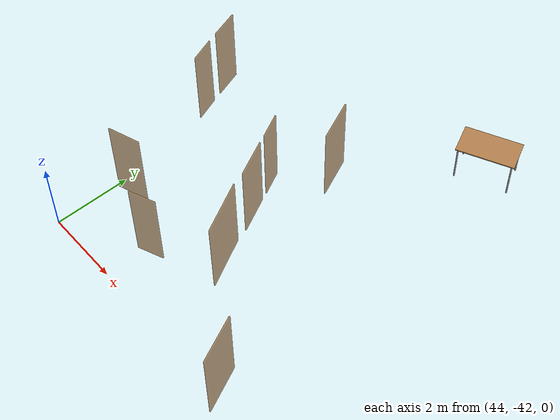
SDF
<sdf version="1.7">
 <world name="world">
  <include><uri>model://sun</uri></include>
  <include>
   <name>OpenRobotics/Table_8</name>
   <uri>model://Table</uri>
   <pose>49.67875066271883 -33.06764321038489 0.0 0 0 0.4547</pose>
   <static>True</static>
  </include>
  <model name="D1">
   <pose>46.92098903169145 -38.269014869920476 0.0 0 0 -1.0989798712124257</pose>
   <link name="right">
    <pose>0 0 1.11 0 0 0</pose>
    <visual name="right_visual">
     <geometry><box><size>0.9994952973221634 0.03 2.2</size></box></geometry>
     <material><ambient>0.5 0.25 0 0.6</ambient><diffuse>0.5 0.25 0 0.6</diffuse></material>
    </visual>
    <collision name="right_collision">
     <geometry><box><size>0.9994952973221634 0.03 2.2</size></box></geometry>
     <surface><contact><collide_bitmask>0x02</collide_bitmask></contact></surface>
    </collision>
    <inertial>
     <mass>50.0</mass>
     <inertia><ixx>20.17041666666667</ixx><iyy>24.329128539038006</iyy><izz>4.166211872371333</izz></inertia>
    </inertial>
   </link>
   <joint name="right_joint" type="revolute">
    <parent>world</parent>
    <child>right</child>
    <axis><xyz>0 0 1</xyz><limit><lower>0</lower><upper>1.57</upper></limit></axis>
    <pose>0.5047476486610817 0 0 0 0 0</pose>
   </joint>
   <plugin name="door_D1" filename="libdoor.so">
    <v_max_door>0.5</v_max_door>
    <a_max_door>0.3</a_max_door>
    <a_nom_door>0.15</a_nom_door>
    <dx_min_door>0.01</dx_min_door>
    <f_max_door>500.0</f_max_door>
    <door name="D1" type="SwingDoor" left_joint_name="empty_joint" right_joint_name="right_joint"/>
   </plugin>
  </model>
  <model name="D3">
   <pose>44.45780143954799 -40.09541944021848 0.0 0 0 -2.8085231029714666</pose>
   <link name="right">
    <pose>0 0 1.11 0 0 0</pose>
    <visual name="right_visual">
     <geometry><box><size>0.8422487052230405 0.03 2.2</size></box></geometry>
     <material><ambient>0.5 0.25 0 0.6</ambient><diffuse>0.5 0.25 0 0.6</diffuse></material>
    </visual>
    <collision name="right_collision">
     <geometry><box><size>0.8422487052230405 0.03 2.2</size></box></geometry>
     <surface><contact><collide_bitmask>0x02</collide_bitmask></contact></surface>
    </collision>
    <inertial>
     <mass>50.0</mass>
     <inertia><ixx>20.17041666666667</ixx><iyy>23.122428672707873</iyy><izz>2.959512006041201</izz></inertia>
    </inertial>
   </link>
   <joint name="right_joint" type="revolute">
    <parent>world</parent>
    <child>right</child>
    <axis><xyz>0 0 1</xyz><limit><lower>0</lower><upper>1.57</upper></limit></axis>
    <pose>0.42612435261152026 0 0 0 0 0</pose>
   </joint>
   <plugin name="door_D3" filename="libdoor.so">
    <v_max_door>0.5</v_max_door>
    <a_max_door>0.3</a_max_door>
    <a_nom_door>0.15</a_nom_door>
    <dx_min_door>0.01</dx_min_door>
    <f_max_door>500.0</f_max_door>
    <door name="D3" type="SwingDoor" left_joint_name="empty_joint" right_joint_name="right_joint"/>
   </plugin>
  </model>
  <model name="D4">
   <pose>46.452834850111266 -37.32451124756395 0.0 0 0 -1.096903326789822</pose>
   <link name="right">
    <pose>0 0 1.11 0 0 0</pose>
    <visual name="right_visual">
     <geometry><box><size>0.6756513604164147 0.03 2.2</size></box></geometry>
     <material><ambient>0.5 0.25 0 0.6</ambient><diffuse>0.5 0.25 0 0.6</diffuse></material>
    </visual>
    <collision name="right_collision">
     <geometry><box><size>0.6756513604164147 0.03 2.2</size></box></geometry>
     <surface><contact><collide_bitmask>0x02</collide_bitmask></contact></surface>
    </collision>
    <inertial>
     <mass>50.0</mass>
     <inertia><ixx>20.17041666666667</ixx><iyy>22.068769836802307</iyy><izz>1.9058531701356332</izz></inertia>
    </inertial>
   </link>
   <joint name="right_joint" type="revolute">
    <parent>world</parent>
    <child>right</child>
    <axis><xyz>0 0 1</xyz><limit><lower>0</lower><upper>1.57</upper></limit></axis>
    <pose>0.34282568020820736 0 0 0 0 0</pose>
   </joint>
   <plugin name="door_D4" filename="libdoor.so">
    <v_max_door>0.5</v_max_door>
    <a_max_door>0.3</a_max_door>
    <a_nom_door>0.15</a_nom_door>
    <dx_min_door>0.01</dx_min_door>
    <f_max_door>500.0</f_max_door>
    <door name="D4" type="SwingDoor" left_joint_name="empty_joint" right_joint_name="right_joint"/>
   </plugin>
  </model>
  <model name="D5">
   <pose>47.334678886530554 -36.035351446791466 0.0 0 0 -1.15391151212805</pose>
   <link name="right">
    <pose>0 0 1.11 0 0 0</pose>
    <visual name="right_visual">
     <geometry><box><size>1.1116058339812642 0.03 2.2</size></box></geometry>
     <material><ambient>0.5 0.25 0 0.6</ambient><diffuse>0.5 0.25 0 0.6</diffuse></material>
    </visual>
    <collision name="right_collision">
     <geometry><box><size>1.1116058339812642 0.03 2.2</size></box></geometry>
     <surface><contact><collide_bitmask>0x02</collide_bitmask></contact></surface>
    </collision>
    <inertial>
     <mass>50.0</mass>
     <inertia><ixx>20.17041666666667</ixx><iyy>25.315281375588263</iyy><izz>5.152364708921591</izz></inertia>
    </inertial>
   </link>
   <joint name="right_joint" type="revolute">
    <parent>world</parent>
    <child>right</child>
    <axis><xyz>0 0 -1</xyz><limit><lower>0</lower><upper>1.57</upper></limit></axis>
    <pose>0.5608029169906321 0 0 0 0 0</pose>
   </joint>
   <plugin name="door_D5" filename="libdoor.so">
    <v_max_door>0.5</v_max_door>
    <a_max_door>0.3</a_max_door>
    <a_nom_door>0.15</a_nom_door>
    <dx_min_door>0.01</dx_min_door>
    <f_max_door>500.0</f_max_door>
    <door name="D5" type="SwingDoor" left_joint_name="empty_joint" right_joint_name="right_joint"/>
   </plugin>
  </model>
  <model name="D6">
   <pose>50.13620547812626 -41.8280907334605 0.0 0 0 -1.1319738374537602</pose>
   <link name="right">
    <pose>0 0 1.11 0 0 0</pose>
    <visual name="right_visual">
     <geometry><box><size>1.1896493416000884 0.03 2.2</size></box></geometry>
     <material><ambient>0.5 0.25 0 0.6</ambient><diffuse>0.5 0.25 0 0.6</diffuse></material>
    </visual>
    <collision name="right_collision">
     <geometry><box><size>1.1896493416000884 0.03 2.2</size></box></geometry>
     <surface><contact><collide_bitmask>0x02</collide_bitmask></contact></surface>
    </collision>
    <inertial>
     <mass>50.0</mass>
     <inertia><ixx>20.17041666666667</ixx><iyy>26.063606483206353</iyy><izz>5.900689816539682</izz></inertia>
    </inertial>
   </link>
   <joint name="right_joint" type="revolute">
    <parent>world</parent>
    <child>right</child>
    <axis><xyz>0 0 -1</xyz><limit><lower>0</lower><upper>1.57</upper></limit></axis>
    <pose>0.5998246708000442 0 0 0 0 0</pose>
   </joint>
   <plugin name="door_D6" filename="libdoor.so">
    <v_max_door>0.5</v_max_door>
    <a_max_door>0.3</a_max_door>
    <a_nom_door>0.15</a_nom_door>
    <dx_min_door>0.01</dx_min_door>
    <f_max_door>500.0</f_max_door>
    <door name="D6" type="SwingDoor" left_joint_name="empty_joint" right_joint_name="right_joint"/>
   </plugin>
  </model>
  <model name="D10">
   <pose>47.57296742996311 -39.65833894975704 0.0 0 0 -1.079641047657816</pose>
   <link name="right">
    <pose>0 0 1.11 0 0 0</pose>
    <visual name="right_visual">
     <geometry><box><size>1.3928633332641263 0.03 2.2</size></box></geometry>
     <material><ambient>0.5 0.25 0 0.6</ambient><diffuse>0.5 0.25 0 0.6</diffuse></material>
    </visual>
    <collision name="right_collision">
     <geometry><box><size>1.3928633332641263 0.03 2.2</size></box></geometry>
     <surface><contact><collide_bitmask>0x02</collide_bitmask></contact></surface>
    </collision>
    <inertial>
     <mass>50.0</mass>
     <inertia><ixx>20.17041666666667</ixx><iyy>28.250284438131892</iyy><izz>8.08736777146522</izz></inertia>
    </inertial>
   </link>
   <joint name="right_joint" type="revolute">
    <parent>world</parent>
    <child>right</child>
    <axis><xyz>0 0 1</xyz><limit><lower>0</lower><upper>1.57</upper></limit></axis>
    <pose>0.7014316666320631 0 0 0 0 0</pose>
   </joint>
   <plugin name="door_D10" filename="libdoor.so">
    <v_max_door>0.5</v_max_door>
    <a_max_door>0.3</a_max_door>
    <a_nom_door>0.15</a_nom_door>
    <dx_min_door>0.01</dx_min_door>
    <f_max_door>500.0</f_max_door>
    <door name="D10" type="SwingDoor" left_joint_name="empty_joint" right_joint_name="right_joint"/>
   </plugin>
  </model>
  <model name="D11">
   <pose>46.17590338310796 -40.836919662903654 0.0 0 0 0.3930652923323702</pose>
   <link name="right">
    <pose>0 0 1.11 0 0 0</pose>
    <visual name="right_visual">
     <geometry><box><size>0.695187343908026 0.03 2.2</size></box></geometry>
     <material><ambient>0.5 0.25 0 0.6</ambient><diffuse>0.5 0.25 0 0.6</diffuse></material>
    </visual>
    <collision name="right_collision">
     <geometry><box><size>0.695187343908026 0.03 2.2</size></box></geometry>
     <surface><contact><collide_bitmask>0x02</collide_bitmask></contact></surface>
    </collision>
    <inertial>
     <mass>50.0</mass>
     <inertia><ixx>20.17041666666667</ixx><iyy>22.180356013041237</iyy><izz>2.017439346374567</izz></inertia>
    </inertial>
   </link>
   <joint name="right_joint" type="revolute">
    <parent>world</parent>
    <child>right</child>
    <axis><xyz>0 0 1</xyz><limit><lower>0</lower><upper>1.57</upper></limit></axis>
    <pose>0.352593671954013 0 0 0 0 0</pose>
   </joint>
   <plugin name="door_D11" filename="libdoor.so">
    <v_max_door>0.5</v_max_door>
    <a_max_door>0.3</a_max_door>
    <a_nom_door>0.15</a_nom_door>
    <dx_min_door>0.01</dx_min_door>
    <f_max_door>500.0</f_max_door>
    <door name="D11" type="SwingDoor" left_joint_name="empty_joint" right_joint_name="right_joint"/>
   </plugin>
  </model>
  <model name="D23">
   <pose>43.486549401759575 -37.0138881594209 0.0 0 0 -1.2084228363325602</pose>
   <link name="right">
    <pose>0 0 1.11 0 0 0</pose>
    <visual name="right_visual">
     <geometry><box><size>0.6777649873222565 0.03 2.2</size></box></geometry>
     <material><ambient>0.5 0.25 0 0.6</ambient><diffuse>0.5 0.25 0 0.6</diffuse></material>
    </visual>
    <collision name="right_collision">
     <geometry><box><size>0.6777649873222565 0.03 2.2</size></box></geometry>
     <surface><contact><collide_bitmask>0x02</collide_bitmask></contact></surface>
    </collision>
    <inertial>
     <mass>50.0</mass>
     <inertia><ixx>20.17041666666667</ixx><iyy>22.08068907516642</iyy><izz>1.917772408499744</izz></inertia>
    </inertial>
   </link>
   <joint name="right_joint" type="revolute">
    <parent>world</parent>
    <child>right</child>
    <axis><xyz>0 0 1</xyz><limit><lower>0</lower><upper>1.57</upper></limit></axis>
    <pose>0.3438824936611283 0 0 0 0 0</pose>
   </joint>
   <plugin name="door_D23" filename="libdoor.so">
    <v_max_door>0.5</v_max_door>
    <a_max_door>0.3</a_max_door>
    <a_nom_door>0.15</a_nom_door>
    <dx_min_door>0.01</dx_min_door>
    <f_max_door>500.0</f_max_door>
    <door name="D23" type="SwingDoor" left_joint_name="empty_joint" right_joint_name="right_joint"/>
   </plugin>
  </model>
  <model name="D24">
   <pose>43.149007163618066 -36.05532739108209 0.0 0 0 -1.2416042181407194</pose>
   <link name="right">
    <pose>0 0 1.11 0 0 0</pose>
    <visual name="right_visual">
     <geometry><box><size>0.7832578912584792 0.03 2.2</size></box></geometry>
     <material><ambient>0.5 0.25 0 0.6</ambient><diffuse>0.5 0.25 0 0.6</diffuse></material>
    </visual>
    <collision name="right_collision">
     <geometry><box><size>0.7832578912584792 0.03 2.2</size></box></geometry>
     <surface><contact><collide_bitmask>0x02</collide_bitmask></contact></surface>
    </collision>
    <inertial>
     <mass>50.0</mass>
     <inertia><ixx>20.17041666666667</ixx><iyy>22.722887184244502</iyy><izz>2.559970517577832</izz></inertia>
    </inertial>
   </link>
   <joint name="right_joint" type="revolute">
    <parent>world</parent>
    <child>right</child>
    <axis><xyz>0 0 1</xyz><limit><lower>0</lower><upper>1.57</upper></limit></axis>
    <pose>0.3966289456292396 0 0 0 0 0</pose>
   </joint>
   <plugin name="door_D24" filename="libdoor.so">
    <v_max_door>0.5</v_max_door>
    <a_max_door>0.3</a_max_door>
    <a_nom_door>0.15</a_nom_door>
    <dx_min_door>0.01</dx_min_door>
    <f_max_door>500.0</f_max_door>
    <door name="D24" type="SwingDoor" left_joint_name="empty_joint" right_joint_name="right_joint"/>
   </plugin>
  </model>
 </world>
</sdf>
